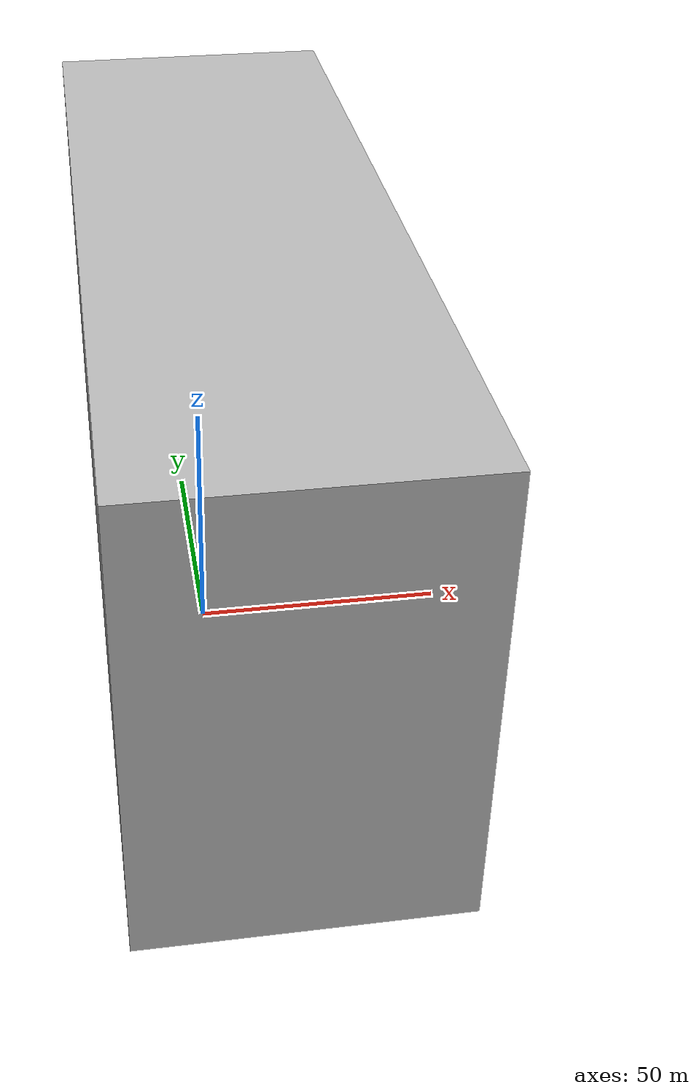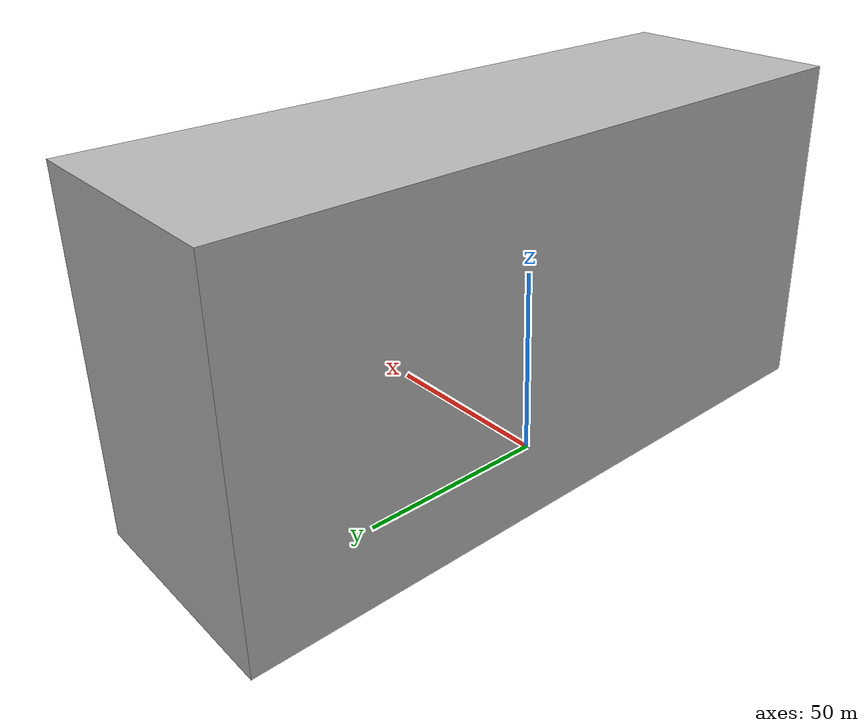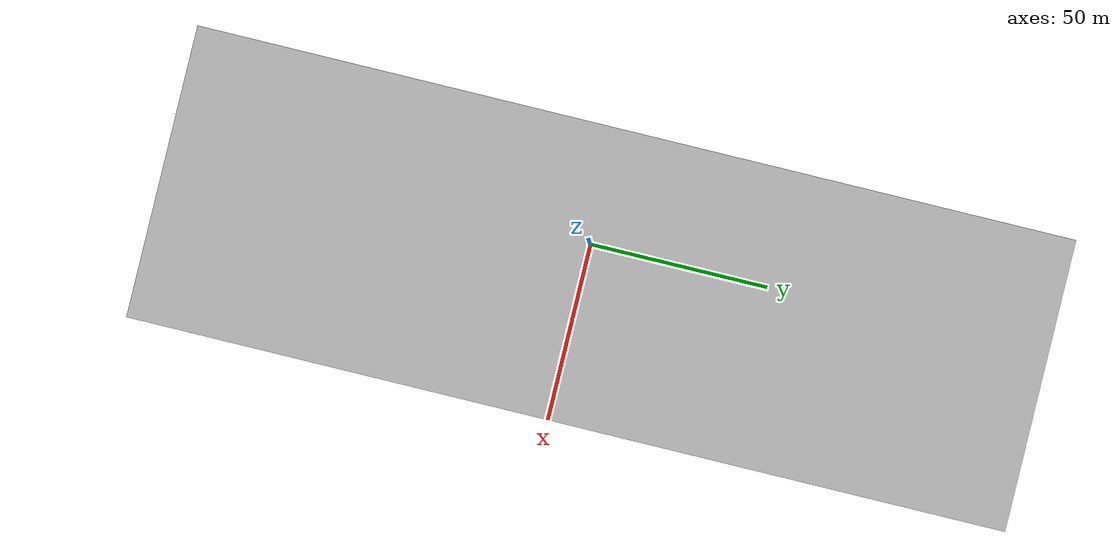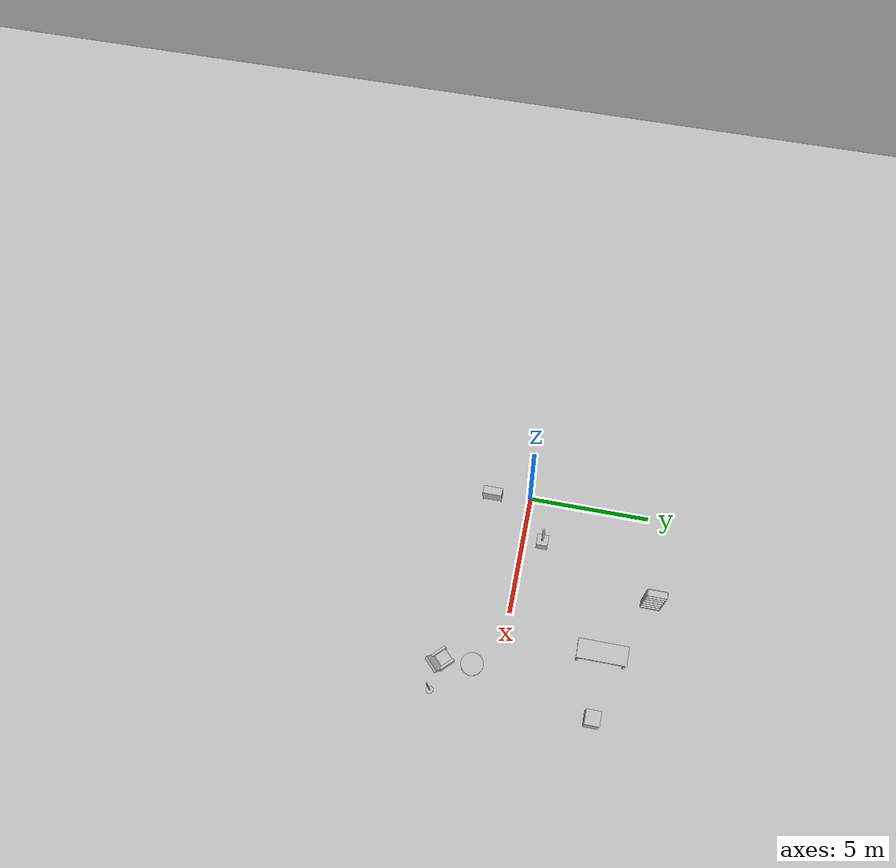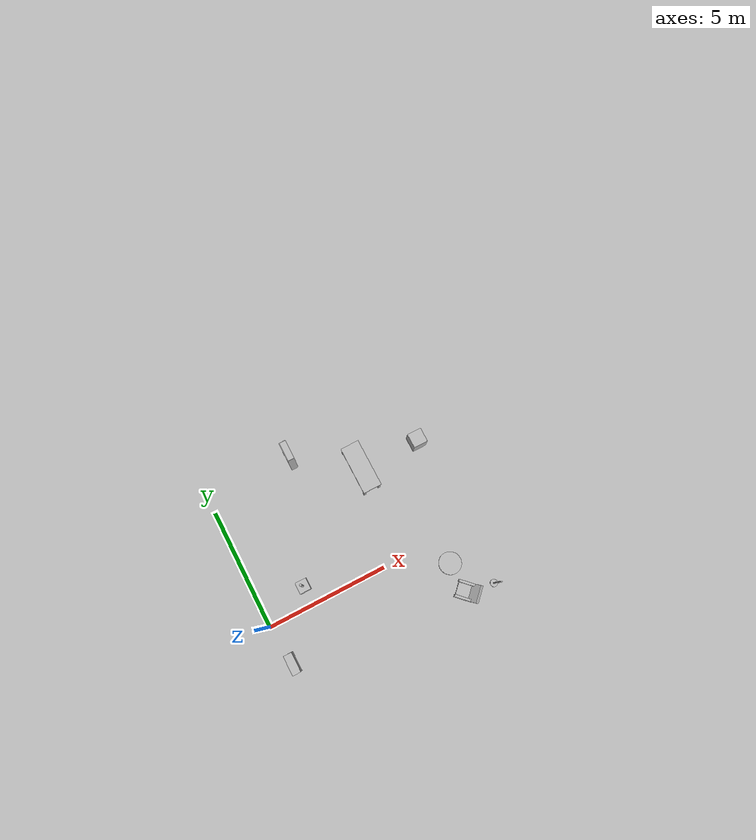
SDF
<sdf version="1.6">
 <world name="rwc2024">
  <include><name>coat_hanger</name><uri>model://rwc2024/coat_hanger</uri><pose>1.85 0.8 0 0 0 0</pose></include>
  <include>
   <name>hallway_cabinet</name>
   <uri>model://rwc2024/hallway_cabinet</uri>
   <pose>0.2075 -1.6 0 0 0 0</pose>
  </include>
  <include><name>lamp</name><uri>model://rwc2024/lamp</uri><pose>8.545 -2.5425 0 0 0 0</pose></include>
  <include>
   <name>coffee_table</name>
   <uri>model://rwc2024/coffee_table</uri>
   <pose>7.335 -1.0725 0 0 0 -0.523598775</pose>
  </include>
  <include>
   <name>lounge_chair</name>
   <uri>model://rwc2024/lounge_chair</uri>
   <pose>7.335 -2.25 0 0 0 2.355</pose>
  </include>
  <include>
   <name>dinner_table</name>
   <uri>model://rwc2024/dinner_table</uri>
   <pose>5.99 3.873 0 0 0 1.57079632679</pose>
  </include>
  <include>
   <name>kitchen_counter</name>
   <uri>model://rwc2024/kitchen_counter</uri>
   <pose>8.496 5.0525 0 0 0 3.14159265359</pose>
  </include>
  <include>
   <name>dishwasher</name>
   <uri>model://rwc2024/dishwasher</uri>
   <pose>8.5285 3.8565 0 0 0 3.14159265359</pose>
  </include>
  <include>
   <name>kitchen_cabinet</name>
   <uri>model://rwc2024/kitchen_cabinet</uri>
   <pose>3.64 5.55 0 0 0 0</pose>
  </include>
  <model name="initial_pose" type="waypoint"><static>true</static></model>
  <model name="rips_point_1" type="waypoint">
   <pose>4.25 0.25 0 0 0 0.78539816339</pose>
   <static>true</static>
  </model>
  <model name="rips_point_2" type="waypoint">
   <pose>4.5 0.0 0 0 0 0.78539816339</pose>
   <static>true</static>
  </model>
  <model name="rips_point_3" type="waypoint">
   <pose>4.0 -0.5 0 0 0 0.78539816339</pose>
   <static>true</static>
  </model>
  <model name="exit_1_rips" type="waypoint"><pose>3 6.75 0 0 0 1.57079632679</pose><static>true</static></model>
  <model name="exit_2_rips" type="waypoint"><pose>3 6.0 0 0 0 1.57079632679</pose><static>true</static></model>
  <model name="exit_3_rips" type="waypoint"><pose>3 5.25 0 0 0 1.57079632679</pose><static>true</static></model>
  <physics type="ode">
   <real_time_update_rate>333.0</real_time_update_rate>
   <max_step_size>0.003</max_step_size>
   <ode><solver><type>quick</type><iters>100</iters></solver><constraints><cfm>0.0001</cfm></constraints></ode>
  </physics>
 </world>
</sdf>

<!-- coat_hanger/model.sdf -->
<sdf version="1.6">
  <model name="rwc2024/coat_hanger">
    <link name="1_link">
      <collision name="1_col">
        <geometry>
          <box>
            <size>0.47 0.47 0.52</size>
          </box>
        </geometry>
      </collision>
      <visual name="1_vis">
        <geometry>
          <box>
            <size>0.47 0.47 0.52</size>
          </box>
        </geometry>
      </visual>
      <pose>0.0 0.0 0.26 0 0 0</pose>
    </link>
    <link name="2_link">
      <collision name="2_col">
        <geometry>
          <cylinder>
            <radius>0.045</radius>
            <length>1.86</length>
          </cylinder>
        </geometry>
      </collision>
      <visual name="2_vis">
        <geometry>
          <cylinder>
            <radius>0.045</radius>
            <length>1.86</length>
          </cylinder>
        </geometry>
      </visual>
      <pose>0.0 0.0 0.93 0 0 0</pose>
    </link>
  </model>
</sdf>

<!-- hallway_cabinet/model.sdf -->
<sdf version="1.6">
  <model name="rwc2024/hallway_cabinet">
    <static>true</static>
    <link name="1_link">
      <collision name="1_col">
        <geometry>
          <box>
            <size>0.345 0.8 0.65</size>
          </box>
        </geometry>
      </collision>
      <visual name="1_vis">
        <geometry>
          <box>
            <size>0.345 0.8 0.65</size>
          </box>
        </geometry>
      </visual>
      <pose>0.0 0.0 0.485 0 0 0</pose>
    </link>
    <link name="2_link">
      <collision name="2_col">
        <geometry>
          <box>
            <size>0.04 0.04 0.16</size>
          </box>
        </geometry>
      </collision>
      <visual name="2_vis">
        <geometry>
          <box>
            <size>0.04 0.04 0.16</size>
          </box>
        </geometry>
      </visual>
      <pose>-0.1525 -0.38 0.08 0 0 0</pose>
    </link>
    <link name="3_link">
      <collision name="3_col">
        <geometry>
          <box>
            <size>0.04 0.04 0.16</size>
          </box>
        </geometry>
      </collision>
      <visual name="3_vis">
        <geometry>
          <box>
            <size>0.04 0.04 0.16</size>
          </box>
        </geometry>
      </visual>
      <pose>0.1525 -0.38 0.08 0 0 0</pose>
    </link>
    <link name="4_link">
      <collision name="4_col">
        <geometry>
          <box>
            <size>0.04 0.04 0.16</size>
          </box>
        </geometry>
      </collision>
      <visual name="4_vis">
        <geometry>
          <box>
            <size>0.04 0.04 0.16</size>
          </box>
        </geometry>
      </visual>
      <pose>-0.1525 0.38 0.08 0 0 0</pose>
    </link>
    <link name="5_link">
      <collision name="5_col">
        <geometry>
          <box>
            <size>0.04 0.04 0.16</size>
          </box>
        </geometry>
      </collision>
      <visual name="5_vis">
        <geometry>
          <box>
            <size>0.04 0.04 0.16</size>
          </box>
        </geometry>
      </visual>
      <pose>0.1525 0.38 0.08 0 0 0</pose>
    </link>
    <link name="on_top_of">
      <virtual_volume name="on_top_of_vv">
        <geometry>
          <box>
            <size>0.325 0.74 0.25</size>
          </box>
        </geometry>
        <pose>0.0 0.0 0.955 0 0 0</pose>
      </virtual_volume>
    </link>
    <link name="in_front_of">
      <virtual_volume name="in_front_of_vv">
        <geometry>
          <box>
            <size>0.2 0.6 0.01</size>
          </box>
        </geometry>
        <pose>0.6725 0.0 0.005 0 0 0</pose>
      </virtual_volume>
    </link>
  </model>
</sdf>

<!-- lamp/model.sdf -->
<sdf version="1.6">
  <model name="rwc2024/lamp">
    <static>true</static>
    <link name="1_link">
      <collision name="1_col">
        <geometry>
            <cylinder>
                <radius>0.15</radius>
                <length>0.045</length>
            </cylinder>
        </geometry>
      </collision>
      <visual name="1_vis">
        <geometry>
            <cylinder>
                <radius>0.15</radius>
                <length>0.045</length>
            </cylinder>
        </geometry>
      </visual>
      <pose>0.0 0.0 0.0225 0 0 0</pose>
    </link>
        <link name="2_link">
      <collision name="2_col">
        <geometry>
            <cylinder>
                <radius>0.0275</radius>
                <length>1.72</length>
            </cylinder>
        </geometry>
      </collision>
      <visual name="2_vis">
        <geometry>
            <cylinder>
                <radius>0.0275</radius>
                <length>1.72</length>
            </cylinder>
        </geometry>
      </visual>
      <pose>0.0 0.0 0.905 0 0 0</pose>
    </link>
  </model>
</sdf>

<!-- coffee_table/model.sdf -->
<sdf version="1.6">
  <model name="rwc2024/coffee_table">
    <static>true</static>
    <link name="1_link">
      <collision name="1_col">
        <geometry>
            <cylinder>
                <radius>0.45</radius>
                <length>0.08</length>
            </cylinder>
        </geometry>
      </collision>
      <visual name="1_vis">
        <geometry>
            <cylinder>
                <radius>0.45</radius>
                <length>0.08</length>
            </cylinder>
        </geometry>
      </visual>
      <pose>0.0 0.0 0.45 0 0 0</pose>
    </link>
    <link name="on_top_of">
      <virtual_volume name="on_top_of_vv">
        <geometry>
          <cylinder>
            <length>0.25</length>
            <radius>0.44</radius>
          </cylinder>
        </geometry>
      </virtual_volume>
      <pose>0 0 0.575 0 0 0</pose>
    </link>
    <link name="in_front_of">
      <virtual_volume name="in_front_of_vv">
        <geometry>
          <box>
            <size>0.2 0.35 0.01</size>
          </box>
        </geometry>
      </virtual_volume>
      <pose>0.9 0. 0.005 0 0 0</pose>
    </link>
    <static>true</static>

  </model>
</sdf>

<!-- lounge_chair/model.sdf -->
<sdf version="1.6">
  <model name="rwc2024/lounge_chair">
    <static>true</static>
    <link name="base_link">
      <collision name="base_col">
        <geometry>
          <box>
            <size>0.6 0.5 0.18</size>
          </box>
        </geometry>
      </collision>
      <visual name="base_vis">
        <geometry>
          <box>
            <size>0.6 0.5 0.18</size>
          </box>
        </geometry>
      </visual>
      <pose>0.0 0.0 0.34 0 0 0</pose>
    </link>
    <link name="right_armrest_link">
      <collision name="right_armrest_col">
        <geometry>
          <box>
            <size>0.66 0.1 0.36</size>
          </box>
        </geometry>
      </collision>
      <visual name="right_armrest_vis">
        <geometry>
          <box>
            <size>0.66 0.1 0.36</size>
          </box>
        </geometry>
      </visual>
      <pose>0.0 0.3 0.43 0 0 0</pose>
    </link>
    <link name="left_armrest_link">
      <collision name="left_armrest_col">
        <geometry>
          <box>
            <size>0.66 0.1 0.36</size>
          </box>
        </geometry>
      </collision>
      <visual name="left_armrest_vis">
        <geometry>
          <box>
            <size>0.66 0.1 0.36</size>
          </box>
        </geometry>
      </visual>
      <pose>0.0 -0.3 0.43 0 0 0</pose>
    </link>
    <link name="back_link">
      <collision name="back_col">
        <geometry>
          <box>
            <size>0.12 0.7 0.512</size>
          </box>
        </geometry>
      </collision>
      <visual name="back_vis">
        <geometry>
          <box>
            <size>0.12 0.7 0.512</size>
          </box>
        </geometry>
      </visual>
      <pose>-0.395 0 0.6475 0 -0.555493735 0</pose>
    </link>
    <link name="on_top_of">
      <virtual_volume name="on_top_of_vv">
        <geometry>
          <box>
            <size>0.4 0.4 0.35</size>
          </box>
        </geometry>
        <pose>0.075 0.0 0.625 0 0 0</pose>
      </virtual_volume>
    </link>
    <link name="in_front_of">
      <virtual_volume name="in_front_of_vv">
        <geometry>
          <box>
            <size>0.2 1.1 0.01</size>
          </box>
        </geometry>
        <pose>0.9 0.0 0.005 0 0 0</pose>
      </virtual_volume>
    </link>
  </model>
</sdf>

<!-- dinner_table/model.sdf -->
<sdf version="1.6">
  <model name="rwc2024/dinner_table">
    <static>true</static>
    <link name="1_link">
      <collision name="1_col">
        <geometry>
          <box>
            <size>2.0 0.78 0.105</size>
          </box>
        </geometry>
      </collision>
      <visual name="1_vis">
        <geometry>
          <box>
            <size>2.0 0.78 0.105</size>
          </box>
        </geometry>
      </visual>
      <pose>0.0 0.0 0.7165 0 0 0</pose>
    </link>
    <link name="2_link">
      <collision name="2_col">
        <geometry>
          <box>
            <size>0.097 0.097 0.664</size>
          </box>
        </geometry>
      </collision>
      <visual name="2_vis">
        <geometry>
          <box>
            <size>0.097 0.097 0.664</size>
          </box>
        </geometry>
      </visual>
      <pose>-0.931 -0.323 0.332 0 0 0</pose>
    </link>
    <link name="3_link">
      <collision name="3_col">
        <geometry>
          <box>
            <size>0.097 0.097 0.664</size>
          </box>
        </geometry>
      </collision>
      <visual name="3_vis">
        <geometry>
          <box>
            <size>0.097 0.097 0.664</size>
          </box>
        </geometry>
      </visual>
      <pose>0.931 -0.323 0.332 0 0 0</pose>
    </link>
    <link name="4_link">
      <collision name="4_col">
        <geometry>
          <box>
            <size>0.097 0.097 0.664</size>
          </box>
        </geometry>
      </collision>
      <visual name="4_vis">
        <geometry>
          <box>
            <size>0.097 0.097 0.664</size>
          </box>
        </geometry>
      </visual>
      <pose>-0.931 0.323 0.332 0 0 0</pose>
    </link>
    <link name="5_link">
      <collision name="5_col">
        <geometry>
          <box>
            <size>0.097 0.097 0.664</size>
          </box>
        </geometry>
      </collision>
      <visual name="5_vis">
        <geometry>
          <box>
            <size>0.097 0.097 0.664</size>
          </box>
        </geometry>
      </visual>
      <pose>0.931 0.323 0.332 0 0 0</pose>
    </link>
    <link name="on_top_of">
      <virtual_volume name="on_top_of_vv">
        <geometry>
          <box>
            <size>1.939 0.683 0.25</size>
          </box>
        </geometry>
        <pose>0.0 0.0 0.914 0 0 0</pose>
      </virtual_volume>
    </link>
    <link name="in_front_of">
      <virtual_volume name="in_front_of_vv">
        <geometry>
          <box>
            <size>0.2 0.543 0.01</size>
          </box>
        </geometry>
        <pose>1.4795 0.0 0.005 0 0 0</pose>
      </virtual_volume>
    </link>
  </model>
</sdf>

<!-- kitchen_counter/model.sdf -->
<sdf version="1.6">
  <model name="rwc2024/kitchen_counter">
    <static>true</static>
    <link name="1_link">
      <collision name="1_col">
        <geometry>
          <box>
            <size>59.5 179.5 90.8</size>
          </box>
        </geometry>
      </collision>
      <visual name="1_vis">
        <geometry>
          <box>
            <size>59.5 179.5 90.8</size>
          </box>
        </geometry>
      </visual>
      <pose>0.0 0.0 45.4 0 0 0</pose>
    </link>
    <link name="on_top_of">
      <virtual_volume name="on_top_of_vv">
        <geometry>
          <box>
            <size>59.48 179.44 0.25</size>
          </box>
        </geometry>
        <pose>0.0 0.0 90.945 0 0 0</pose>
      </virtual_volume>
    </link>
    <link name="in_front_of">
      <virtual_volume name="in_front_of_vv">
        <geometry>
          <box>
            <size>0.2 179.3 0.01</size>
          </box>
        </geometry>
        <pose>30.25 0.0 0.005 0 0 0</pose>
      </virtual_volume>
    </link>
  </model>
</sdf>

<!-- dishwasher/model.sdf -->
<sdf version="1.6">
  <model name="rwc2024/dishwasher">
    <static>true</static>
    <link name="1_link">
      <collision name="1_col">
        <geometry>
          <box>
            <size>0.593 0.597 0.843</size>
          </box>
        </geometry>
      </collision>
      <visual name="1_vis">
        <geometry>
          <box>
            <size>0.593 0.597 0.843</size>
          </box>
        </geometry>
      </visual>
      <pose>0.0 0.0 0.4215 0 0 0</pose>
    </link>
    <link name="on_top_of">
      <virtual_volume name="on_top_of_vv">
        <geometry>
          <box>
            <size>0.573 0.537 0.25</size>
          </box>
        </geometry>
        <pose>0.0 0.0 0.988 0 0 0</pose>
      </virtual_volume>
    </link>
    <link name="in_front_of">
      <virtual_volume name="in_front_of_vv">
        <geometry>
          <box>
            <size>0.2 0.397 0.01</size>
          </box>
        </geometry>
        <pose>0.7965 0.0 0.005 0 0 0</pose>
      </virtual_volume>
    </link>
    <link name="in_front_of_ctt">
      <virtual_volume name="in_front_of_vv">
        <geometry>
          <box>
            <size>0.2 0.397 0.01</size>
          </box>
        </geometry>
        <pose>1.69 0.0 0.005 0 0 0</pose>
      </virtual_volume>
    </link>
  </model>
</sdf>

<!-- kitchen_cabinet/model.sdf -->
<sdf version="1.6">
  <model name="rwc2024/kitchen_cabinet">
    <static>true</static>
    <link name="1_link">
      <collision name="1_col">
        <geometry>
          <box>
            <size>0.28 0.018 2.02</size>
          </box>
        </geometry>
      </collision>
      <visual name="1_vis">
        <geometry>
          <box>
            <size>0.28 0.018 2.02</size>
          </box>
        </geometry>
      </visual>
      <pose>0.0 -0.391 1.01 0 0 0</pose>
    </link>
    <link name="2_link">
      <collision name="2_col">
        <geometry>
          <box>
            <size>0.28 0.018 2.02</size>
          </box>
        </geometry>
      </collision>
      <visual name="2_vis">
        <geometry>
          <box>
            <size>0.28 0.018 2.02</size>
          </box>
        </geometry>
      </visual>
      <pose>0.0 0.391 1.01 0 0 0</pose>
    </link>
    <link name="3_link">
      <collision name="3_col">
        <geometry>
          <box>
            <size>0.018 0.8 2.02</size>
          </box>
        </geometry>
      </collision>
      <visual name="3_vis">
        <geometry>
          <box>
            <size>0.018 0.8 2.02</size>
          </box>
        </geometry>
      </visual>
      <pose>-0.131 0.0 1.01 0 0 0</pose>
    </link>
    <link name="4_link">
      <collision name="4_col">
        <geometry>
          <box>
            <size>0.262 0.764 0.018</size>
          </box>
        </geometry>
      </collision>
      <visual name="4_vis">
        <geometry>
          <box>
            <size>0.262 0.764 0.018</size>
          </box>
        </geometry>
      </visual>
      <pose>0.009 0.0 2.011 0 0 0</pose>
    </link>
    <link name="5_link">
      <collision name="5_col">
        <geometry>
          <box>
            <size>0.262 0.764 0.096</size>
          </box>
        </geometry>
      </collision>
      <visual name="5_vis">
        <geometry>
          <box>
            <size>0.262 0.764 0.096</size>
          </box>
        </geometry>
      </visual>
      <pose>0.009 0.0 0.048 0 0 0</pose>
    </link>
    <link name="6_link">
      <collision name="6_col">
        <geometry>
          <box>
            <size>0.262 0.764 0.048</size>
          </box>
        </geometry>
        <pose>0.0 0.0 -0.015 0 0 0</pose>
      </collision>
      <visual name="6_vis">
        <geometry>
          <box>
            <size>0.262 0.764 0.018</size>
          </box>
        </geometry>
      </visual>
      <pose>0.009 0.0 0.404 0 0 0</pose>
    </link>
    <link name="7_link">
      <collision name="7_col">
        <geometry>
          <box>
            <size>0.262 0.764 0.048</size>
          </box>
        </geometry>
        <pose>0.0 0.0 -0.015 0 0 0</pose>
      </collision>
      <visual name="7_vis">
        <geometry>
          <box>
            <size>0.262 0.764 0.018</size>
          </box>
        </geometry>
      </visual>
      <pose>0.009 0.0 0.724 0 0 0</pose>
    </link>
    <link name="8_link">
      <collision name="8_col">
        <geometry>
          <box>
            <size>0.262 0.764 0.048</size>
          </box>
        </geometry>
        <pose>0.0 0.0 -0.015 0 0 0</pose>
      </collision>
      <visual name="8_vis">
        <geometry>
          <box>
            <size>0.262 0.764 0.018</size>
          </box>
        </geometry>
      </visual>
      <pose>0.009 0.0 1.052 0 0 0</pose>
    </link>
    <link name="9_link">
      <collision name="9_col">
        <geometry>
          <box>
            <size>0.262 0.764 0.048</size>
          </box>
        </geometry>
        <pose>0.0 0.0 -0.015 0 0 0</pose>
      </collision>
      <visual name="9_vis">
        <geometry>
          <box>
            <size>0.262 0.764 0.018</size>
          </box>
        </geometry>
      </visual>
      <pose>0.009 0.0 1.4 0 0 0</pose>
    </link>
    <link name="10_link">
      <collision name="10_col">
        <geometry>
          <box>
            <size>0.262 0.764 0.02</size>
          </box>
        </geometry>
      </collision>
      <visual name="10_vis">
        <geometry>
          <box>
            <size>0.262 0.764 0.02</size>
          </box>
        </geometry>
      </visual>
      <pose>0.009 0.0 1.687 0 0 0</pose>
    </link>
    <link name="in_front_of">
      <virtual_volume name="in_front_of_vv">
        <geometry>
          <box>
            <size>0.2 0.6 0.01</size>
          </box>
        </geometry>
        <pose>0.64 0.0 0.005 0 0 0</pose>
      </virtual_volume>
    </link>
    <link name="shelf1">
      <virtual_volume name="shelf1_vv">
        <geometry>
          <box>
            <size>0.242 0.704 0.25</size>
          </box>
        </geometry>
        <pose>0.009 0.0 0.241 0 0 0</pose>
      </virtual_volume>
    </link>
    <link name="shelf2">
      <virtual_volume name="shelf2_vv">
        <geometry>
          <box>
            <size>0.242 0.704 0.25</size>
          </box>
        </geometry>
        <pose>0.009 0.0 0.558 0 0 0</pose>
      </virtual_volume>
    </link>
    <link name="shelf3">
      <virtual_volume name="shelf3_vv">
        <geometry>
          <box>
            <size>0.242 0.704 0.25</size>
          </box>
        </geometry>
        <pose>0.009 0.0 0.878 0 0 0</pose>
      </virtual_volume>
    </link>
    <link name="shelf4">
      <virtual_volume name="shelf4_vv">
        <geometry>
          <box>
            <size>0.242 0.704 0.25</size>
          </box>
        </geometry>
        <pose>0.009 0.0 1.206 0 0 0</pose>
      </virtual_volume>
    </link>
    <link name="shelf5">
      <virtual_volume name="shelf5_vv">
        <geometry>
          <box>
            <size>0.242 0.704 0.25</size>
          </box>
        </geometry>
        <pose>0.009 0.0 1.554 0 0 0</pose>
      </virtual_volume>
    </link>
    <link name="shelf6">
      <virtual_volume name="shelf6_vv">
        <geometry>
          <box>
            <size>0.242 0.704 0.25</size>
          </box>
        </geometry>
        <pose>0.009 0.0 1.842 0 0 0</pose>
      </virtual_volume>
    </link>
  </model>
</sdf>
